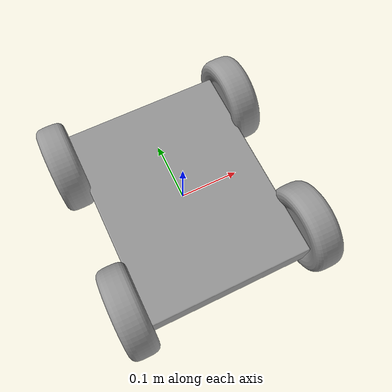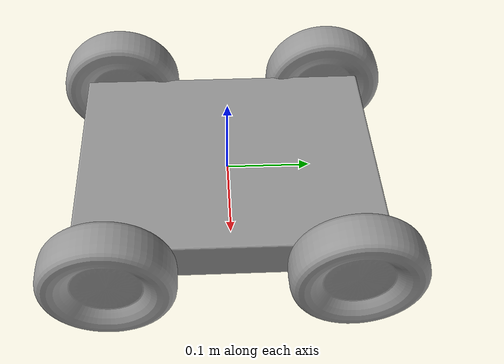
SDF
<?xml version='1.0'?>
<sdf version='1.6'>
  <model name='simple_mobile_base'>
    <link name='base'>
      <inertial>
        <mass>1</mass>
        <inertia>
          <ixx>0.166667</ixx>
          <ixy>0</ixy>
          <ixz>0</ixz>
          <iyy>0.166667</iyy>
          <iyz>0</iyz>
          <izz>0.166667</izz>
        </inertia>
        <pose frame=''>0 0 0 0 -0 0</pose>
      </inertial>
      <pose frame=''>0.0 0 -6e-06 0 -0 0</pose>
      <gravity>1</gravity>
      <self_collide>0</self_collide>
      <kinematic>0</kinematic>
      <enable_wind>0</enable_wind>
      <visual name='visual'>
        <pose frame=''>0 0 0 0 -0 0</pose>
        <geometry>
          <mesh>
            <uri>/home/spencer/Projects/ROS/catkin_ws/src/adns_robot/simulation/meshes/simple_mobile_base.stl</uri>
            <scale>1 1 1</scale>
          </mesh>
        </geometry>
        <material>
          <lighting>1</lighting>
          <script>
            <uri>file://media/materials/scripts/gazebo.material</uri>
            <name>Gazebo/Grey</name>
          </script>
          <shader type='vertex'>
            <normal_map>__default__</normal_map>
          </shader>
          <ambient>0.3 0.3 0.3 1</ambient>
          <diffuse>0.7 0.7 0.7 1</diffuse>
          <specular>0.01 0.01 0.01 1</specular>
          <emissive>0 0 0 1</emissive>
        </material>
        <transparency>0</transparency>
        <cast_shadows>1</cast_shadows>
      </visual>
      <collision name='collision'>
        <laser_retro>0</laser_retro>
        <max_contacts>10</max_contacts>
        <pose frame=''>0 0 0 0 -0 0</pose>
        <geometry>
          <box>
            <size>0.2794 0.3556 0.0508</size>
          </box>
        </geometry>
        <surface>
          <friction>
            <ode>
              <mu>1</mu>
              <mu2>1</mu2>
              <fdir1>0 0 0</fdir1>
              <slip1>0</slip1>
              <slip2>0</slip2>
            </ode>
            <torsional>
              <coefficient>1</coefficient>
              <patch_radius>0</patch_radius>
              <surface_radius>0</surface_radius>
              <use_patch_radius>1</use_patch_radius>
              <ode>
                <slip>0</slip>
              </ode>
            </torsional>
          </friction>
          <bounce>
            <restitution_coefficient>0</restitution_coefficient>
            <threshold>1e+06</threshold>
          </bounce>
          <contact>
            <collide_without_contact>0</collide_without_contact>
            <collide_without_contact_bitmask>1</collide_without_contact_bitmask>
            <collide_bitmask>1</collide_bitmask>
            <ode>
              <soft_cfm>0</soft_cfm>
              <soft_erp>0.2</soft_erp>
              <kp>1e+13</kp>
              <kd>1</kd>
              <max_vel>0.01</max_vel>
              <min_depth>0</min_depth>
            </ode>
            <bullet>
              <split_impulse>1</split_impulse>
              <split_impulse_penetration_threshold>-0.01</split_impulse_penetration_threshold>
              <soft_cfm>0</soft_cfm>
              <soft_erp>0.2</soft_erp>
              <kp>1e+13</kp>
              <kd>1</kd>
            </bullet>
          </contact>
        </surface>
      </collision>
    </link>
    <link name='front_left_wheel'>
      <inertial>
        <mass>1</mass>
        <inertia>
          <ixx>0.166667</ixx>
          <ixy>0</ixy>
          <ixz>0</ixz>
          <iyy>0.166667</iyy>
          <iyz>0</iyz>
          <izz>0.166667</izz>
        </inertia>
        <pose frame=''>0 0 0 0 -0 0</pose>
      </inertial>
      <pose frame=''>-0.16016 0.136183 1e-06 0 1.5707 0</pose>
      <gravity>1</gravity>
      <self_collide>0</self_collide>
      <kinematic>0</kinematic>
      <enable_wind>0</enable_wind>
      <visual name='visual'>
        <pose frame=''>0 0 0 0 -0 0</pose>
        <geometry>
          <mesh>
            <uri>/home/spencer/Projects/ROS/catkin_ws/src/adns_robot/simulation/meshes/simple_mobile_wheel.stl</uri>
            <scale>1 1 1</scale>
          </mesh>
        </geometry>
        <material>
          <lighting>1</lighting>
          <script>
            <uri>file://media/materials/scripts/gazebo.material</uri>
            <name>Gazebo/Grey</name>
          </script>
          <shader type='vertex'>
            <normal_map>__default__</normal_map>
          </shader>
          <ambient>0.3 0.3 0.3 1</ambient>
          <diffuse>0.7 0.7 0.7 1</diffuse>
          <specular>0.01 0.01 0.01 1</specular>
          <emissive>0 0 0 1</emissive>
        </material>
        <transparency>0</transparency>
        <cast_shadows>1</cast_shadows>
      </visual>
      <collision name='collision'>
        <laser_retro>0</laser_retro>
        <max_contacts>10</max_contacts>
        <pose frame=''>0 0 0 0 -0 0</pose>
        <geometry>
          <cylinder>
            <radius>0.0762</radius>
            <length>0.0508</length>
          </cylinder>
        </geometry>
        <surface>
          <friction>
            <ode>
              <mu>1</mu>
              <mu2>1</mu2>
              <fdir1>0 0 0</fdir1>
              <slip1>0</slip1>
              <slip2>0</slip2>
            </ode>
            <torsional>
              <coefficient>1</coefficient>
              <patch_radius>0</patch_radius>
              <surface_radius>0</surface_radius>
              <use_patch_radius>1</use_patch_radius>
              <ode>
                <slip>0</slip>
              </ode>
            </torsional>
          </friction>
          <bounce>
            <restitution_coefficient>0</restitution_coefficient>
            <threshold>1e+06</threshold>
          </bounce>
          <contact>
            <collide_without_contact>0</collide_without_contact>
            <collide_without_contact_bitmask>1</collide_without_contact_bitmask>
            <collide_bitmask>1</collide_bitmask>
            <ode>
              <soft_cfm>0</soft_cfm>
              <soft_erp>0.2</soft_erp>
              <kp>1e+13</kp>
              <kd>1</kd>
              <max_vel>0.01</max_vel>
              <min_depth>0</min_depth>
            </ode>
            <bullet>
              <split_impulse>1</split_impulse>
              <split_impulse_penetration_threshold>-0.01</split_impulse_penetration_threshold>
              <soft_cfm>0</soft_cfm>
              <soft_erp>0.2</soft_erp>
              <kp>1e+13</kp>
              <kd>1</kd>
            </bullet>
          </contact>
        </surface>
      </collision>
    </link>
    <link name='front_right_wheel'>
      <inertial>
        <mass>1</mass>
        <inertia>
          <ixx>0.166667</ixx>
          <ixy>0</ixy>
          <ixz>0</ixz>
          <iyy>0.166667</iyy>
          <iyz>0</iyz>
          <izz>0.166667</izz>
        </inertia>
        <pose frame=''>0 0 0 0 -0 0</pose>
      </inertial>
      <pose frame=''>0.16016 0.136183 1e-06 0 1.5707 3.14159</pose>
      <gravity>1</gravity>
      <self_collide>0</self_collide>
      <kinematic>0</kinematic>
      <enable_wind>0</enable_wind>
      <visual name='visual'>
        <pose frame=''>0 0 0 0 -0 0</pose>
        <geometry>
          <mesh>
            <uri>/home/spencer/Projects/ROS/catkin_ws/src/adns_robot/simulation/meshes/simple_mobile_wheel.stl</uri>
            <scale>1 1 1</scale>
          </mesh>
        </geometry>
        <material>
          <lighting>1</lighting>
          <script>
            <uri>file://media/materials/scripts/gazebo.material</uri>
            <name>Gazebo/Grey</name>
          </script>
          <shader type='vertex'>
            <normal_map>__default__</normal_map>
          </shader>
          <ambient>0.3 0.3 0.3 1</ambient>
          <diffuse>0.7 0.7 0.7 1</diffuse>
          <specular>0.01 0.01 0.01 1</specular>
          <emissive>0 0 0 1</emissive>
        </material>
        <transparency>0</transparency>
        <cast_shadows>1</cast_shadows>
      </visual>
      <collision name='collision'>
        <laser_retro>0</laser_retro>
        <max_contacts>10</max_contacts>
        <pose frame=''>0 0 0 0 -0 0</pose>
        <geometry>
          <cylinder>
            <radius>0.0762</radius>
            <length>0.0508</length>
          </cylinder>
        </geometry>
        <surface>
          <friction>
            <ode>
              <mu>1</mu>
              <mu2>1</mu2>
              <fdir1>0 0 0</fdir1>
              <slip1>0</slip1>
              <slip2>0</slip2>
            </ode>
            <torsional>
              <coefficient>1</coefficient>
              <patch_radius>0</patch_radius>
              <surface_radius>0</surface_radius>
              <use_patch_radius>1</use_patch_radius>
              <ode>
                <slip>0</slip>
              </ode>
            </torsional>
          </friction>
          <bounce>
            <restitution_coefficient>0</restitution_coefficient>
            <threshold>1e+06</threshold>
          </bounce>
          <contact>
            <collide_without_contact>0</collide_without_contact>
            <collide_without_contact_bitmask>1</collide_without_contact_bitmask>
            <collide_bitmask>1</collide_bitmask>
            <ode>
              <soft_cfm>0</soft_cfm>
              <soft_erp>0.2</soft_erp>
              <kp>1e+13</kp>
              <kd>1</kd>
              <max_vel>0.01</max_vel>
              <min_depth>0</min_depth>
            </ode>
            <bullet>
              <split_impulse>1</split_impulse>
              <split_impulse_penetration_threshold>-0.01</split_impulse_penetration_threshold>
              <soft_cfm>0</soft_cfm>
              <soft_erp>0.2</soft_erp>
              <kp>1e+13</kp>
              <kd>1</kd>
            </bullet>
          </contact>
        </surface>
      </collision>
    </link>
    <link name='back_left_wheel'>
      <inertial>
        <mass>1</mass>
        <inertia>
          <ixx>0.166667</ixx>
          <ixy>0</ixy>
          <ixz>0</ixz>
          <iyy>0.166667</iyy>
          <iyz>0</iyz>
          <izz>0.166667</izz>
        </inertia>
        <pose frame=''>0 0 0 0 -0 0</pose>
      </inertial>
      <pose frame=''>-0.16016 -0.136183 1e-06 0 1.5707 0</pose>
      <gravity>1</gravity>
      <self_collide>0</self_collide>
      <kinematic>0</kinematic>
      <enable_wind>0</enable_wind>
      <visual name='visual'>
        <pose frame=''>0 0 0 0 -0 0</pose>
        <geometry>
          <mesh>
            <uri>/home/spencer/Projects/ROS/catkin_ws/src/adns_robot/simulation/meshes/simple_mobile_wheel.stl</uri>
            <scale>1 1 1</scale>
          </mesh>
        </geometry>
        <material>
          <lighting>1</lighting>
          <script>
            <uri>file://media/materials/scripts/gazebo.material</uri>
            <name>Gazebo/Grey</name>
          </script>
          <shader type='vertex'>
            <normal_map>__default__</normal_map>
          </shader>
          <ambient>0.3 0.3 0.3 1</ambient>
          <diffuse>0.7 0.7 0.7 1</diffuse>
          <specular>0.01 0.01 0.01 1</specular>
          <emissive>0 0 0 1</emissive>
        </material>
        <transparency>0</transparency>
        <cast_shadows>1</cast_shadows>
      </visual>
      <collision name='collision'>
        <laser_retro>0</laser_retro>
        <max_contacts>10</max_contacts>
        <pose frame=''>0 0 0 0 -0 0</pose>
        <geometry>
          <cylinder>
            <radius>0.0762</radius>
            <length>0.0508</length>
          </cylinder>
        </geometry>
        <surface>
          <friction>
            <ode>
              <mu>1</mu>
              <mu2>1</mu2>
              <fdir1>0 0 0</fdir1>
              <slip1>0</slip1>
              <slip2>0</slip2>
            </ode>
            <torsional>
              <coefficient>1</coefficient>
              <patch_radius>0</patch_radius>
              <surface_radius>0</surface_radius>
              <use_patch_radius>1</use_patch_radius>
              <ode>
                <slip>0</slip>
              </ode>
            </torsional>
          </friction>
          <bounce>
            <restitution_coefficient>0</restitution_coefficient>
            <threshold>1e+06</threshold>
          </bounce>
          <contact>
            <collide_without_contact>0</collide_without_contact>
            <collide_without_contact_bitmask>1</collide_without_contact_bitmask>
            <collide_bitmask>1</collide_bitmask>
            <ode>
              <soft_cfm>0</soft_cfm>
              <soft_erp>0.2</soft_erp>
              <kp>1e+13</kp>
              <kd>1</kd>
              <max_vel>0.01</max_vel>
              <min_depth>0</min_depth>
            </ode>
            <bullet>
              <split_impulse>1</split_impulse>
              <split_impulse_penetration_threshold>-0.01</split_impulse_penetration_threshold>
              <soft_cfm>0</soft_cfm>
              <soft_erp>0.2</soft_erp>
              <kp>1e+13</kp>
              <kd>1</kd>
            </bullet>
          </contact>
        </surface>
      </collision>
    </link>
    <link name='back_right_wheel'>
      <inertial>
        <mass>1</mass>
        <inertia>
          <ixx>0.166667</ixx>
          <ixy>0</ixy>
          <ixz>0</ixz>
          <iyy>0.166667</iyy>
          <iyz>0</iyz>
          <izz>0.166667</izz>
        </inertia>
        <pose frame=''>0 0 0 0 -0 0</pose>
      </inertial>
      <pose frame=''>0.16016 -0.136183 1e-06 0 1.5707 3.14159</pose>
      <gravity>1</gravity>
      <self_collide>0</self_collide>
      <kinematic>0</kinematic>
      <enable_wind>0</enable_wind>
      <visual name='visual'>
        <pose frame=''>0 0 0 0 -0 0</pose>
        <geometry>
          <mesh>
            <uri>/home/spencer/Projects/ROS/catkin_ws/src/adns_robot/simulation/meshes/simple_mobile_wheel.stl</uri>
            <scale>1 1 1</scale>
          </mesh>
        </geometry>
        <material>
          <lighting>1</lighting>
          <script>
            <uri>file://media/materials/scripts/gazebo.material</uri>
            <name>Gazebo/Grey</name>
          </script>
          <shader type='vertex'>
            <normal_map>__default__</normal_map>
          </shader>
          <ambient>0.3 0.3 0.3 1</ambient>
          <diffuse>0.7 0.7 0.7 1</diffuse>
          <specular>0.01 0.01 0.01 1</specular>
          <emissive>0 0 0 1</emissive>
        </material>
        <transparency>0</transparency>
        <cast_shadows>1</cast_shadows>
      </visual>
      <collision name='collision'>
        <laser_retro>0</laser_retro>
        <max_contacts>10</max_contacts>
        <pose frame=''>0 0 0 0 -0 0</pose>
        <geometry>
          <cylinder>
            <radius>0.0762</radius>
            <length>0.0508</length>
          </cylinder>
        </geometry>
        <surface>
          <friction>
            <ode>
              <mu>1</mu>
              <mu2>1</mu2>
              <fdir1>0 0 0</fdir1>
              <slip1>0</slip1>
              <slip2>0</slip2>
            </ode>
            <torsional>
              <coefficient>1</coefficient>
              <patch_radius>0</patch_radius>
              <surface_radius>0</surface_radius>
              <use_patch_radius>1</use_patch_radius>
              <ode>
                <slip>0</slip>
              </ode>
            </torsional>
          </friction>
          <bounce>
            <restitution_coefficient>0</restitution_coefficient>
            <threshold>1e+06</threshold>
          </bounce>
          <contact>
            <collide_without_contact>0</collide_without_contact>
            <collide_without_contact_bitmask>1</collide_without_contact_bitmask>
            <collide_bitmask>1</collide_bitmask>
            <ode>
              <soft_cfm>0</soft_cfm>
              <soft_erp>0.2</soft_erp>
              <kp>1e+13</kp>
              <kd>1</kd>
              <max_vel>0.01</max_vel>
              <min_depth>0</min_depth>
            </ode>
            <bullet>
              <split_impulse>1</split_impulse>
              <split_impulse_penetration_threshold>-0.01</split_impulse_penetration_threshold>
              <soft_cfm>0</soft_cfm>
              <soft_erp>0.2</soft_erp>
              <kp>1e+13</kp>
              <kd>1</kd>
            </bullet>
          </contact>
        </surface>
      </collision>
    </link>
    <joint name='front_left_motor' type='revolute'>
      <parent>base</parent>
      <child>front_left_wheel</child>
      <pose frame=''>0 0 0 0 -0 0</pose>
      <axis>
        <xyz>0 0 1</xyz>
        <use_parent_model_frame>0</use_parent_model_frame>
        <limit>
          <lower>-1.79769e+308</lower>
          <upper>1.79769e+308</upper>
          <effort>-1</effort>
          <velocity>-1</velocity>
        </limit>
        <dynamics>
          <spring_reference>0</spring_reference>
          <spring_stiffness>0</spring_stiffness>
          <damping>0</damping>
          <friction>0</friction>
        </dynamics>
      </axis>
      <physics>
        <ode>
          <limit>
            <cfm>0</cfm>
            <erp>0.2</erp>
          </limit>
          <suspension>
            <cfm>0</cfm>
            <erp>0.2</erp>
          </suspension>
        </ode>
      </physics>
    </joint>
    <joint name='back_left_motor' type='revolute'>
      <parent>base</parent>
      <child>back_left_wheel</child>
      <pose frame=''>0 0 0 0 -0 0</pose>
      <axis>
        <xyz>0 0 1</xyz>
        <use_parent_model_frame>0</use_parent_model_frame>
        <limit>
          <lower>-1.79769e+308</lower>
          <upper>1.79769e+308</upper>
          <effort>-1</effort>
          <velocity>-1</velocity>
        </limit>
        <dynamics>
          <spring_reference>0</spring_reference>
          <spring_stiffness>0</spring_stiffness>
          <damping>0</damping>
          <friction>0</friction>
        </dynamics>
      </axis>
      <physics>
        <ode>
          <limit>
            <cfm>0</cfm>
            <erp>0.2</erp>
          </limit>
          <suspension>
            <cfm>0</cfm>
            <erp>0.2</erp>
          </suspension>
        </ode>
      </physics>
    </joint>
    <joint name='front_right_motor' type='revolute'>
      <parent>base</parent>
      <child>front_right_wheel</child>
      <pose frame=''>0 0 0 0 -0 0</pose>
      <axis>
        <xyz>0 0 1</xyz>
        <use_parent_model_frame>0</use_parent_model_frame>
        <limit>
          <lower>-1.79769e+308</lower>
          <upper>1.79769e+308</upper>
          <effort>-1</effort>
          <velocity>-1</velocity>
        </limit>
        <dynamics>
          <spring_reference>0</spring_reference>
          <spring_stiffness>0</spring_stiffness>
          <damping>0</damping>
          <friction>0</friction>
        </dynamics>
      </axis>
      <physics>
        <ode>
          <limit>
            <cfm>0</cfm>
            <erp>0.2</erp>
          </limit>
          <suspension>
            <cfm>0</cfm>
            <erp>0.2</erp>
          </suspension>
        </ode>
      </physics>
    </joint>
    <joint name='back_right_motor' type='revolute'>
      <parent>base</parent>
      <child>back_right_wheel</child>
      <pose frame=''>0 0 0 0 -0 0</pose>
      <axis>
        <xyz>0 0 1</xyz>
        <use_parent_model_frame>0</use_parent_model_frame>
        <limit>
          <lower>-1.79769e+308</lower>
          <upper>1.79769e+308</upper>
          <effort>-1</effort>
          <velocity>-1</velocity>
        </limit>
        <dynamics>
          <spring_reference>0</spring_reference>
          <spring_stiffness>0</spring_stiffness>
          <damping>0</damping>
          <friction>0</friction>
        </dynamics>
      </axis>
      <physics>
        <ode>
          <limit>
            <cfm>0</cfm>
            <erp>0.2</erp>
          </limit>
          <suspension>
            <cfm>0</cfm>
            <erp>0.2</erp>
          </suspension>
        </ode>
      </physics>
    </joint>
    <static>0</static>
    <allow_auto_disable>1</allow_auto_disable>
  </model>
  <transmission name="front_left_transmission">
    <type>transmission_interface/SimpleTransmission</type>
    <joint name="front_left_wheel">
      <hardwareInterface>EffortJointInterface</hardwareInterface>
    </joint>
  </transmission>
  <transmission name="back_left_wheel">
    <joint name="back_left_wheel">
      <hardwareInterface>EffortJointInterface</hardwareInterface>
    </joint>
  </transmission>
  <transmission name="front_right_transmission">
    <joint name="front_right_wheel">
      <hardwareInterface>EffortJointInterface</hardwareInterface>
    </joint>
  </transmission>
  <transmission name="back_right_transmission">
    <joint name="back_right_wheel">
      <hardwareInterface>EffortJointInterface</hardwareInterface>
    </joint>
  </transmission>
  <gazebo>
    <plugin name="gazebo_ros_control" filename="libgazebo_ros_control.so">
      <robotNamespace>/SimpleMobileBase</robotNamespace>
    </plugin>
  </gazebo>
</sdf>
